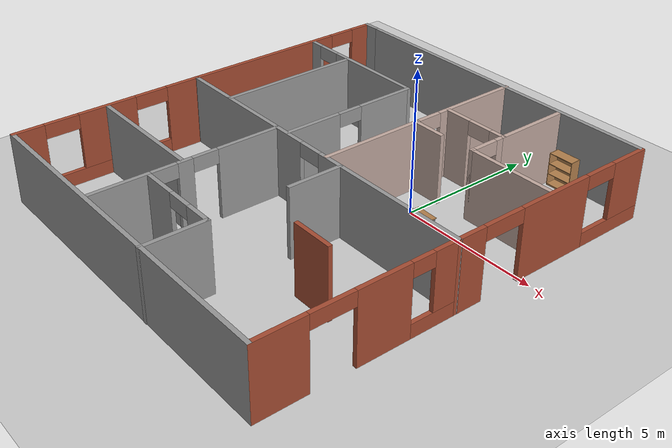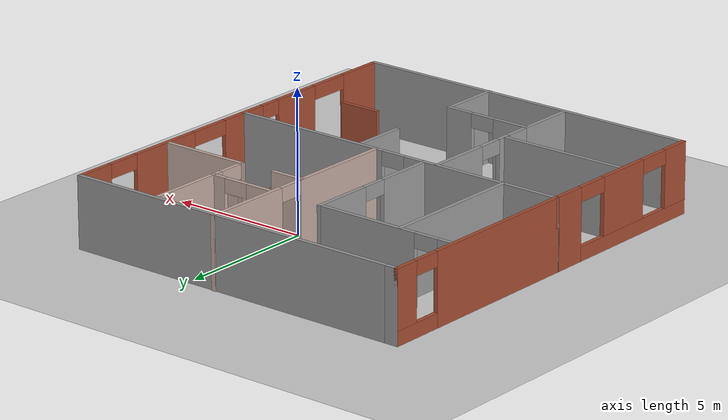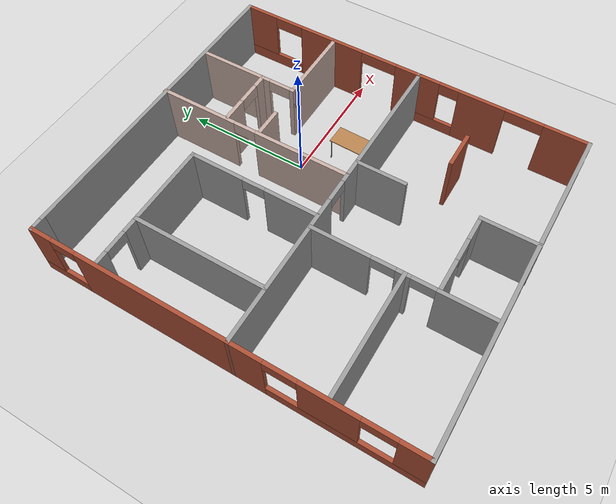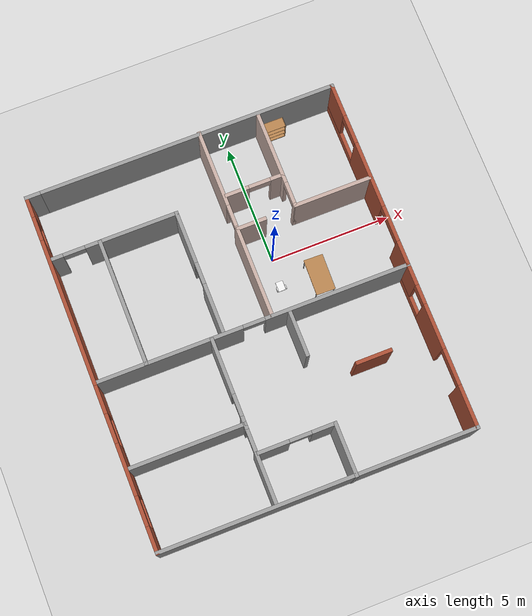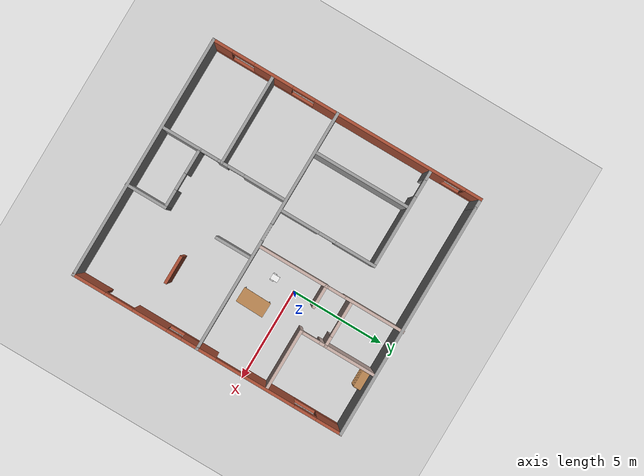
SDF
<sdf version="1.6">
 <world name="default">
  <model name="ground_plane">
   <static>1</static>
   <link name="link">
    <collision name="collision">
     <geometry><plane><normal>0 0 1</normal><size>100 100</size></plane></geometry>
     <surface>
      <contact><collide_bitmask>65535</collide_bitmask></contact>
      <friction><ode><mu>100</mu><mu2>50</mu2></ode></friction>
     </surface>
    </collision>
    <visual name="visual">
     <cast_shadows>0</cast_shadows>
     <geometry><plane><normal>0 0 1</normal><size>100 100</size></plane></geometry>
     <material>
      <script><uri>file://media/materials/scripts/gazebo.material</uri><name>Gazebo/Grey</name></script>
     </material>
    </visual>
   </link>
  </model>
  <model name="floor_plan">
   <pose>-1.88219 -2.06341 0 0 -0 0</pose>
   <link name="Wall_0">
    <pose>0 -0.539534 0 0 -0 3.14039</pose>
    <visual name="Wall_0_Visual_0">
     <pose>-3.50083 0 1.25 0 -0 0</pose>
     <geometry><box><size>5.99834 0.15 2.5</size></box></geometry>
     <material>
      <script><uri>file://media/materials/scripts/gazebo.material</uri><name>Gazebo/Grey</name></script>
      <ambient>1 1 1 1</ambient>
     </material>
     <meta><layer>0</layer></meta>
    </visual>
    <collision name="Wall_0_Collision_0">
     <geometry><box><size>5.99834 0.15 2.5</size></box></geometry>
     <pose>-3.50083 0 1.25 0 -0 0</pose>
    </collision>
    <visual name="Wall_0_Visual_1">
     <pose>3.44917 0 1.25 0 -0 0</pose>
     <geometry><box><size>6.10166 0.15 2.5</size></box></geometry>
     <material>
      <script><uri>file://media/materials/scripts/gazebo.material</uri><name>Gazebo/Grey</name></script>
      <ambient>1 1 1 1</ambient>
     </material>
     <meta><layer>0</layer></meta>
    </visual>
    <collision name="Wall_0_Collision_1">
     <geometry><box><size>6.10166 0.15 2.5</size></box></geometry>
     <pose>3.44917 0 1.25 0 -0 0</pose>
    </collision>
    <visual name="Wall_0_Visual_2">
     <pose>-0.051658 0 2.25 0 -0 0</pose>
     <geometry><box><size>0.9 0.15 0.5</size></box></geometry>
     <material>
      <script><uri>file://media/materials/scripts/gazebo.material</uri><name>Gazebo/Grey</name></script>
      <ambient>1 1 1 1</ambient>
     </material>
     <meta><layer>0</layer></meta>
    </visual>
    <collision name="Wall_0_Collision_2">
     <geometry><box><size>0.9 0.15 0.5</size></box></geometry>
     <pose>-0.051658 0 2.25 0 -0 0</pose>
    </collision>
   </link>
   <link name="Wall_11">
    <collision name="Wall_11_Collision">
     <geometry><box><size>2 0.15 2.5</size></box></geometry>
     <pose>0 0 1.25 0 -0 0</pose>
    </collision>
    <visual name="Wall_11_Visual">
     <pose>0 0 1.25 0 -0 0</pose>
     <geometry><box><size>2 0.15 2.5</size></box></geometry>
     <material>
      <script><uri>file://media/materials/scripts/gazebo.material</uri><name>Gazebo/Grey</name></script>
      <ambient>1 1 1 1</ambient>
     </material>
     <meta><layer>0</layer></meta>
    </visual>
    <pose>1.48948 -1.49915 0 0 0 -1.5708</pose>
   </link>
   <link name="Wall_13">
    <collision name="Wall_13_Collision">
     <geometry><box><size>1.5 0.15 2.5</size></box></geometry>
     <pose>0 0 1.25 0 -0 0</pose>
    </collision>
    <visual name="Wall_13_Visual">
     <pose>0 0 1.25 0 -0 0</pose>
     <geometry><box><size>1.5 0.15 2.5</size></box></geometry>
     <material>
      <script><uri>file://media/materials/scripts/gazebo.material</uri><name>Gazebo/Bricks</name></script>
      <ambient>1 1 1 1</ambient>
     </material>
     <meta><layer>0</layer></meta>
    </visual>
    <pose>3.82409 -3.40918 0 0 -0 0</pose>
   </link>
   <link name="Wall_15">
    <collision name="Wall_15_Collision">
     <geometry><box><size>4.75 0.15 2.5</size></box></geometry>
     <pose>0 0 1.25 0 -0 0</pose>
    </collision>
    <visual name="Wall_15_Visual">
     <pose>0 0 1.25 0 -0 0</pose>
     <geometry><box><size>4.75 0.15 2.5</size></box></geometry>
     <material>
      <script><uri>file://media/materials/scripts/gazebo.material</uri><name>Gazebo/Grey</name></script>
      <ambient>1 1 1 1</ambient>
     </material>
     <meta><layer>0</layer></meta>
    </visual>
    <pose>-3.97817 -4.0327 0 0 -0 3.14159</pose>
   </link>
   <link name="Wall_2">
    <pose>-6.42506 -3.93398 0 0 0 -1.5708</pose>
    <visual name="Wall_2_Visual_0">
     <pose>-2.80871 0 1.25 0 -0 0</pose>
     <geometry><box><size>1.30653 0.15 2.5</size></box></geometry>
     <material>
      <script><uri>file://media/materials/scripts/gazebo.material</uri><name>Gazebo/Bricks</name></script>
      <ambient>1 1 1 1</ambient>
     </material>
     <meta><layer>0</layer></meta>
    </visual>
    <collision name="Wall_2_Collision_0">
     <geometry><box><size>1.30653 0.15 2.5</size></box></geometry>
     <pose>-2.80871 0 1.25 0 -0 0</pose>
    </collision>
    <visual name="Wall_2_Visual_1">
     <pose>0.653263 0 0.25 0 -0 0</pose>
     <geometry><box><size>5.61743 0.15 0.5</size></box></geometry>
     <material>
      <script><uri>file://media/materials/scripts/gazebo.material</uri><name>Gazebo/Bricks</name></script>
      <ambient>1 1 1 1</ambient>
     </material>
     <meta><layer>0</layer></meta>
    </visual>
    <collision name="Wall_2_Collision_1">
     <geometry><box><size>5.61743 0.15 0.5</size></box></geometry>
     <pose>0.653263 0 0.25 0 -0 0</pose>
    </collision>
    <visual name="Wall_2_Visual_2">
     <pose>0.095441 0 1.5 0 -0 0</pose>
     <geometry><box><size>2.10179 0.15 2</size></box></geometry>
     <material>
      <script><uri>file://media/materials/scripts/gazebo.material</uri><name>Gazebo/Bricks</name></script>
      <ambient>1 1 1 1</ambient>
     </material>
     <meta><layer>0</layer></meta>
    </visual>
    <collision name="Wall_2_Collision_2">
     <geometry><box><size>2.10179 0.15 2</size></box></geometry>
     <pose>0.095441 0 1.5 0 -0 0</pose>
    </collision>
    <visual name="Wall_2_Visual_3">
     <pose>2.90416 0 1.5 0 -0 0</pose>
     <geometry><box><size>1.11564 0.15 2</size></box></geometry>
     <material>
      <script><uri>file://media/materials/scripts/gazebo.material</uri><name>Gazebo/Bricks</name></script>
      <ambient>1 1 1 1</ambient>
     </material>
     <meta><layer>0</layer></meta>
    </visual>
    <collision name="Wall_2_Collision_3">
     <geometry><box><size>1.11564 0.15 2</size></box></geometry>
     <pose>2.90416 0 1.5 0 -0 0</pose>
    </collision>
    <visual name="Wall_2_Visual_4">
     <pose>-1.55545 0 2.25 0 -0 0</pose>
     <geometry><box><size>1.2 0.15 0.5</size></box></geometry>
     <material>
      <script><uri>file://media/materials/scripts/gazebo.material</uri><name>Gazebo/Bricks</name></script>
      <ambient>1 1 1 1</ambient>
     </material>
     <meta><layer>0</layer></meta>
    </visual>
    <collision name="Wall_2_Collision_4">
     <geometry><box><size>1.2 0.15 0.5</size></box></geometry>
     <pose>-1.55545 0 2.25 0 -0 0</pose>
    </collision>
    <visual name="Wall_2_Visual_5">
     <pose>1.74633 0 2.25 0 -0 0</pose>
     <geometry><box><size>1.2 0.15 0.5</size></box></geometry>
     <material>
      <script><uri>file://media/materials/scripts/gazebo.material</uri><name>Gazebo/Bricks</name></script>
      <ambient>1 1 1 1</ambient>
     </material>
     <meta><layer>0</layer></meta>
    </visual>
    <collision name="Wall_2_Collision_5">
     <geometry><box><size>1.2 0.15 0.5</size></box></geometry>
     <pose>1.74633 0 2.25 0 -0 0</pose>
    </collision>
   </link>
   <link name="Wall_3">
    <collision name="Wall_3_Collision">
     <geometry><box><size>13 0.15 2.5</size></box></geometry>
     <pose>0 0 1.25 0 -0 0</pose>
    </collision>
    <visual name="Wall_3_Visual">
     <pose>0 0 1.25 0 -0 0</pose>
     <geometry><box><size>13 0.15 2.5</size></box></geometry>
     <material>
      <script><uri>file://media/materials/scripts/gazebo.material</uri><name>Gazebo/Grey</name></script>
      <ambient>1 1 1 1</ambient>
     </material>
     <meta><layer>0</layer></meta>
    </visual>
    <pose>0 -7.32112 0 0 0 -2.4e-05</pose>
   </link>
   <link name="Wall_36">
    <pose>-1.17934 2.06051 0 0 -0 1.5708</pose>
    <visual name="Wall_36_Visual_0">
     <pose>-1.55306 0 1.25 0 -0 0</pose>
     <geometry><box><size>2.14389 0.15 2.5</size></box></geometry>
     <material>
      <script><uri>file://media/materials/scripts/gazebo.material</uri><name>Gazebo/Grey</name></script>
      <ambient>1 1 1 1</ambient>
     </material>
     <meta><layer>0</layer></meta>
    </visual>
    <collision name="Wall_36_Collision_0">
     <geometry><box><size>2.14389 0.15 2.5</size></box></geometry>
     <pose>-1.55306 0 1.25 0 -0 0</pose>
    </collision>
    <visual name="Wall_36_Visual_1">
     <pose>1.52195 0 1.25 0 -0 0</pose>
     <geometry><box><size>2.20611 0.15 2.5</size></box></geometry>
     <material>
      <script><uri>file://media/materials/scripts/gazebo.material</uri><name>Gazebo/Grey</name></script>
      <ambient>1 1 1 1</ambient>
     </material>
     <meta><layer>0</layer></meta>
    </visual>
    <collision name="Wall_36_Collision_1">
     <geometry><box><size>2.20611 0.15 2.5</size></box></geometry>
     <pose>1.52195 0 1.25 0 -0 0</pose>
    </collision>
    <visual name="Wall_36_Visual_2">
     <pose>-0.031111 0 2.25 0 -0 0</pose>
     <geometry><box><size>0.9 0.15 0.5</size></box></geometry>
     <material>
      <script><uri>file://media/materials/scripts/gazebo.material</uri><name>Gazebo/Grey</name></script>
      <ambient>1 1 1 1</ambient>
     </material>
     <meta><layer>0</layer></meta>
    </visual>
    <collision name="Wall_36_Collision_2">
     <geometry><box><size>0.9 0.15 0.5</size></box></geometry>
     <pose>-0.031111 0 2.25 0 -0 0</pose>
    </collision>
   </link>
   <link name="Wall_37">
    <pose>-3.72933 4.61051 0 0 -0 3.14159</pose>
    <visual name="Wall_37_Visual_0">
     <pose>-0.694741 0 1.25 0 -0 0</pose>
     <geometry><box><size>3.86052 0.15 2.5</size></box></geometry>
     <material>
      <script><uri>file://media/materials/scripts/gazebo.material</uri><name>Gazebo/Grey</name></script>
      <ambient>1 1 1 1</ambient>
     </material>
     <meta><layer>0</layer></meta>
    </visual>
    <collision name="Wall_37_Collision_0">
     <geometry><box><size>3.86052 0.15 2.5</size></box></geometry>
     <pose>-0.694741 0 1.25 0 -0 0</pose>
    </collision>
    <visual name="Wall_37_Visual_1">
     <pose>2.38026 0 1.25 0 -0 0</pose>
     <geometry><box><size>0.489482 0.15 2.5</size></box></geometry>
     <material>
      <script><uri>file://media/materials/scripts/gazebo.material</uri><name>Gazebo/Grey</name></script>
      <ambient>1 1 1 1</ambient>
     </material>
     <meta><layer>0</layer></meta>
    </visual>
    <collision name="Wall_37_Collision_1">
     <geometry><box><size>0.489482 0.15 2.5</size></box></geometry>
     <pose>2.38026 0 1.25 0 -0 0</pose>
    </collision>
    <visual name="Wall_37_Visual_2">
     <pose>1.68552 0 2.25 0 -0 0</pose>
     <geometry><box><size>0.9 0.15 0.5</size></box></geometry>
     <material>
      <script><uri>file://media/materials/scripts/gazebo.material</uri><name>Gazebo/Grey</name></script>
      <ambient>1 1 1 1</ambient>
     </material>
     <meta><layer>0</layer></meta>
    </visual>
    <collision name="Wall_37_Collision_2">
     <geometry><box><size>0.9 0.15 0.5</size></box></geometry>
     <pose>1.68552 0 2.25 0 -0 0</pose>
    </collision>
   </link>
   <link name="Wall_39">
    <collision name="Wall_39_Collision">
     <geometry><box><size>5.25 0.15 2.5</size></box></geometry>
     <pose>0 0 1.25 0 -0 0</pose>
    </collision>
    <visual name="Wall_39_Visual">
     <pose>0 0 1.25 0 -0 0</pose>
     <geometry><box><size>5.25 0.15 2.5</size></box></geometry>
     <material>
      <script><uri>file://media/materials/scripts/gazebo.material</uri><name>Gazebo/Grey</name></script>
      <ambient>1 1 1 1</ambient>
     </material>
     <meta><layer>0</layer></meta>
    </visual>
    <pose>-4.34796 2.03294 0 0 0 -1.5708</pose>
   </link>
   <link name="Wall_4">
    <pose>6.42506 -3.93427 0 0 -0 1.5708</pose>
    <visual name="Wall_4_Visual_0">
     <pose>-2.56147 0 1.25 0 -0 0</pose>
     <geometry><box><size>1.80105 0.15 2.5</size></box></geometry>
     <material>
      <script><uri>file://media/materials/scripts/gazebo.material</uri><name>Gazebo/Bricks</name></script>
      <ambient>1 1 1 1</ambient>
     </material>
     <meta><layer>0</layer></meta>
    </visual>
    <collision name="Wall_4_Collision_0">
     <geometry><box><size>1.80105 0.15 2.5</size></box></geometry>
     <pose>-2.56147 0 1.25 0 -0 0</pose>
    </collision>
    <visual name="Wall_4_Visual_1">
     <pose>0.775723 0 1.25 0 -0 0</pose>
     <geometry><box><size>1.87334 0.15 2.5</size></box></geometry>
     <material>
      <script><uri>file://media/materials/scripts/gazebo.material</uri><name>Gazebo/Bricks</name></script>
      <ambient>1 1 1 1</ambient>
     </material>
     <meta><layer>0</layer></meta>
    </visual>
    <collision name="Wall_4_Collision_1">
     <geometry><box><size>1.87334 0.15 2.5</size></box></geometry>
     <pose>0.775723 0 1.25 0 -0 0</pose>
    </collision>
    <visual name="Wall_4_Visual_2">
     <pose>2.5872 0 0.25 0 -0 0</pose>
     <geometry><box><size>1.74961 0.15 0.5</size></box></geometry>
     <material>
      <script><uri>file://media/materials/scripts/gazebo.material</uri><name>Gazebo/Bricks</name></script>
      <ambient>1 1 1 1</ambient>
     </material>
     <meta><layer>0</layer></meta>
    </visual>
    <collision name="Wall_4_Collision_2">
     <geometry><box><size>1.74961 0.15 0.5</size></box></geometry>
     <pose>2.5872 0 0.25 0 -0 0</pose>
    </collision>
    <visual name="Wall_4_Visual_3">
     <pose>2.9872 0 1.5 0 -0 0</pose>
     <geometry><box><size>0.949605 0.15 2</size></box></geometry>
     <material>
      <script><uri>file://media/materials/scripts/gazebo.material</uri><name>Gazebo/Bricks</name></script>
      <ambient>1 1 1 1</ambient>
     </material>
     <meta><layer>0</layer></meta>
    </visual>
    <collision name="Wall_4_Collision_3">
     <geometry><box><size>0.949605 0.15 2</size></box></geometry>
     <pose>2.9872 0 1.5 0 -0 0</pose>
    </collision>
    <visual name="Wall_4_Visual_4">
     <pose>-0.910948 0 2.25 0 -0 0</pose>
     <geometry><box><size>1.5 0.15 0.5</size></box></geometry>
     <material>
      <script><uri>file://media/materials/scripts/gazebo.material</uri><name>Gazebo/Bricks</name></script>
      <ambient>1 1 1 1</ambient>
     </material>
     <meta><layer>0</layer></meta>
    </visual>
    <collision name="Wall_4_Collision_4">
     <geometry><box><size>1.5 0.15 0.5</size></box></geometry>
     <pose>-0.910948 0 2.25 0 -0 0</pose>
    </collision>
    <visual name="Wall_4_Visual_5">
     <pose>2.11239 0 2.25 0 -0 0</pose>
     <geometry><box><size>0.8 0.15 0.5</size></box></geometry>
     <material>
      <script><uri>file://media/materials/scripts/gazebo.material</uri><name>Gazebo/Bricks</name></script>
      <ambient>1 1 1 1</ambient>
     </material>
     <meta><layer>0</layer></meta>
    </visual>
    <collision name="Wall_4_Collision_5">
     <geometry><box><size>0.8 0.15 0.5</size></box></geometry>
     <pose>2.11239 0 2.25 0 -0 0</pose>
    </collision>
   </link>
   <link name="Wall_45">
    <pose>6.425 3.37786 0 0 -0 1.57081</pose>
    <visual name="Wall_45_Visual_0">
     <pose>-3.45923 0 1.25 0 -0 0</pose>
     <geometry><box><size>1.08155 0.15 2.5</size></box></geometry>
     <material>
      <script><uri>file://media/materials/scripts/gazebo.material</uri><name>Gazebo/Bricks</name></script>
      <ambient>1 1 1 1</ambient>
     </material>
     <meta><layer>0</layer></meta>
    </visual>
    <collision name="Wall_45_Collision_0">
     <geometry><box><size>1.08155 0.15 2.5</size></box></geometry>
     <pose>-3.45923 0 1.25 0 -0 0</pose>
    </collision>
    <visual name="Wall_45_Visual_1">
     <pose>-0.023066 0 1.25 0 -0 0</pose>
     <geometry><box><size>2.79077 0.15 2.5</size></box></geometry>
     <material>
      <script><uri>file://media/materials/scripts/gazebo.material</uri><name>Gazebo/Bricks</name></script>
      <ambient>1 1 1 1</ambient>
     </material>
     <meta><layer>0</layer></meta>
    </visual>
    <collision name="Wall_45_Collision_1">
     <geometry><box><size>2.79077 0.15 2.5</size></box></geometry>
     <pose>-0.023066 0 1.25 0 -0 0</pose>
    </collision>
    <visual name="Wall_45_Visual_2">
     <pose>2.68616 0 0.25 0 -0 0</pose>
     <geometry><box><size>2.62768 0.15 0.5</size></box></geometry>
     <material>
      <script><uri>file://media/materials/scripts/gazebo.material</uri><name>Gazebo/Bricks</name></script>
      <ambient>1 1 1 1</ambient>
     </material>
     <meta><layer>0</layer></meta>
    </visual>
    <collision name="Wall_45_Collision_2">
     <geometry><box><size>2.62768 0.15 0.5</size></box></geometry>
     <pose>2.68616 0 0.25 0 -0 0</pose>
    </collision>
    <visual name="Wall_45_Visual_3">
     <pose>3.28616 0 1.5 0 -0 0</pose>
     <geometry><box><size>1.42768 0.15 2</size></box></geometry>
     <material>
      <script><uri>file://media/materials/scripts/gazebo.material</uri><name>Gazebo/Bricks</name></script>
      <ambient>1 1 1 1</ambient>
     </material>
     <meta><layer>0</layer></meta>
    </visual>
    <collision name="Wall_45_Collision_3">
     <geometry><box><size>1.42768 0.15 2</size></box></geometry>
     <pose>3.28616 0 1.5 0 -0 0</pose>
    </collision>
    <visual name="Wall_45_Visual_4">
     <pose>-2.16845 0 2.25 0 -0 0</pose>
     <geometry><box><size>1.5 0.15 0.5</size></box></geometry>
     <material>
      <script><uri>file://media/materials/scripts/gazebo.material</uri><name>Gazebo/Bricks</name></script>
      <ambient>1 1 1 1</ambient>
     </material>
     <meta><layer>0</layer></meta>
    </visual>
    <collision name="Wall_45_Collision_4">
     <geometry><box><size>1.5 0.15 0.5</size></box></geometry>
     <pose>-2.16845 0 2.25 0 -0 0</pose>
    </collision>
    <visual name="Wall_45_Visual_5">
     <pose>1.97232 0 2.25 0 -0 0</pose>
     <geometry><box><size>1.2 0.15 0.5</size></box></geometry>
     <material>
      <script><uri>file://media/materials/scripts/gazebo.material</uri><name>Gazebo/Bricks</name></script>
      <ambient>1 1 1 1</ambient>
     </material>
     <meta><layer>0</layer></meta>
    </visual>
    <collision name="Wall_45_Collision_5">
     <geometry><box><size>1.2 0.15 0.5</size></box></geometry>
     <pose>1.97232 0 2.25 0 -0 0</pose>
    </collision>
   </link>
   <link name="Wall_46">
    <collision name="Wall_46_Collision">
     <geometry><box><size>12.5 0.15 2.5</size></box></geometry>
     <pose>0 0 1.25 0 -0 0</pose>
    </collision>
    <visual name="Wall_46_Visual">
     <pose>0 0 1.25 0 -0 0</pose>
     <geometry><box><size>12.5 0.15 2.5</size></box></geometry>
     <material>
      <script><uri>file://media/materials/scripts/gazebo.material</uri><name>Gazebo/Grey</name></script>
      <ambient>1 1 1 1</ambient>
     </material>
     <meta><layer>0</layer></meta>
    </visual>
    <pose>0.249944 7.303 0 0 -0 3.14159</pose>
   </link>
   <link name="Wall_48">
    <pose>-6.42506 3.378 0 0 -0 1.5708</pose>
    <visual name="Wall_48_Visual_0">
     <pose>-0.956686 0 1.25 0 -0 0</pose>
     <geometry><box><size>6.08663 0.15 2.5</size></box></geometry>
     <material>
      <script><uri>file://media/materials/scripts/gazebo.material</uri><name>Gazebo/Bricks</name></script>
      <ambient>1 1 1 1</ambient>
     </material>
     <meta><layer>0</layer></meta>
    </visual>
    <collision name="Wall_48_Collision_0">
     <geometry><box><size>6.08663 0.15 2.5</size></box></geometry>
     <pose>-0.956686 0 1.25 0 -0 0</pose>
    </collision>
    <visual name="Wall_48_Visual_1">
     <pose>3.04331 0 0.25 0 -0 0</pose>
     <geometry><box><size>1.91337 0.15 0.5</size></box></geometry>
     <material>
      <script><uri>file://media/materials/scripts/gazebo.material</uri><name>Gazebo/Bricks</name></script>
      <ambient>1 1 1 1</ambient>
     </material>
     <meta><layer>0</layer></meta>
    </visual>
    <collision name="Wall_48_Collision_1">
     <geometry><box><size>1.91337 0.15 0.5</size></box></geometry>
     <pose>3.04331 0 0.25 0 -0 0</pose>
    </collision>
    <visual name="Wall_48_Visual_2">
     <pose>3.54331 0 1.5 0 -0 0</pose>
     <geometry><box><size>0.913372 0.15 2</size></box></geometry>
     <material>
      <script><uri>file://media/materials/scripts/gazebo.material</uri><name>Gazebo/Bricks</name></script>
      <ambient>1 1 1 1</ambient>
     </material>
     <meta><layer>0</layer></meta>
    </visual>
    <collision name="Wall_48_Collision_2">
     <geometry><box><size>0.913372 0.15 2</size></box></geometry>
     <pose>3.54331 0 1.5 0 -0 0</pose>
    </collision>
    <visual name="Wall_48_Visual_3">
     <pose>2.58663 0 2.25 0 -0 0</pose>
     <geometry><box><size>1 0.15 0.5</size></box></geometry>
     <material>
      <script><uri>file://media/materials/scripts/gazebo.material</uri><name>Gazebo/Bricks</name></script>
      <ambient>1 1 1 1</ambient>
     </material>
     <meta><layer>0</layer></meta>
    </visual>
    <collision name="Wall_48_Collision_3">
     <geometry><box><size>1 0.15 0.5</size></box></geometry>
     <pose>2.58663 0 2.25 0 -0 0</pose>
    </collision>
   </link>
   <link name="Wall_49">
    <collision name="Wall_49_Collision">
     <geometry><box><size>0.65 0.15 2.5</size></box></geometry>
     <pose>0 0 1.25 0 -0 0</pose>
    </collision>
    <visual name="Wall_49_Visual">
     <pose>0 0 1.25 0 -0 0</pose>
     <geometry><box><size>0.65 0.15 2.5</size></box></geometry>
     <material>
      <script><uri>file://media/materials/scripts/gazebo.material</uri><name>Gazebo/Grey</name></script>
      <ambient>1 1 1 1</ambient>
     </material>
     <meta><layer>0</layer></meta>
    </visual>
    <pose>-6.17506 7.303 0 0 -0 0</pose>
   </link>
   <link name="Wall_51">
    <pose>0.800151 3.41451 0 0 -0 1.5708</pose>
    <visual name="Wall_51_Visual_0">
     <pose>-2.06358 0 1.25 0 -0 0</pose>
     <geometry><box><size>3.87284 0.15 2.5</size></box></geometry>
     <material>
      <script><uri>file://media/materials/scripts/gazebo.material</uri><name>Gazebo/Grey</name></script>
      <ambient>0.760784 0.662745 0.627451 1</ambient>
     </material>
     <meta><layer>0</layer></meta>
    </visual>
    <collision name="Wall_51_Collision_0">
     <geometry><box><size>3.87284 0.15 2.5</size></box></geometry>
     <pose>-2.06358 0 1.25 0 -0 0</pose>
    </collision>
    <visual name="Wall_51_Visual_1">
     <pose>2.38642 0 1.25 0 -0 0</pose>
     <geometry><box><size>3.22716 0.15 2.5</size></box></geometry>
     <material>
      <script><uri>file://media/materials/scripts/gazebo.material</uri><name>Gazebo/Grey</name></script>
      <ambient>0.760784 0.662745 0.627451 1</ambient>
     </material>
     <meta><layer>0</layer></meta>
    </visual>
    <collision name="Wall_51_Collision_1">
     <geometry><box><size>3.22716 0.15 2.5</size></box></geometry>
     <pose>2.38642 0 1.25 0 -0 0</pose>
    </collision>
    <visual name="Wall_51_Visual_2">
     <pose>0.322836 0 2.25 0 -0 0</pose>
     <geometry><box><size>0.9 0.15 0.5</size></box></geometry>
     <material>
      <script><uri>file://media/materials/scripts/gazebo.material</uri><name>Gazebo/Grey</name></script>
      <ambient>0.760784 0.662745 0.627451 1</ambient>
     </material>
     <meta><layer>0</layer></meta>
    </visual>
    <collision name="Wall_51_Collision_2">
     <geometry><box><size>0.9 0.15 0.5</size></box></geometry>
     <pose>0.322836 0 2.25 0 -0 0</pose>
    </collision>
   </link>
   <link name="Wall_53">
    <pose>2.06768 4.57778 0 0 -0 0</pose>
    <visual name="Wall_53_Visual_0">
     <pose>-0.747106 0 1.25 0 -0 0</pose>
     <geometry><box><size>1.00579 0.15 2.5</size></box></geometry>
     <material>
      <script><uri>file://media/materials/scripts/gazebo.material</uri><name>Gazebo/Grey</name></script>
      <ambient>0.760784 0.662745 0.627451 1</ambient>
     </material>
     <meta><layer>0</layer></meta>
    </visual>
    <collision name="Wall_53_Collision_0">
     <geometry><box><size>1.00579 0.15 2.5</size></box></geometry>
     <pose>-0.747106 0 1.25 0 -0 0</pose>
    </collision>
    <visual name="Wall_53_Visual_1">
     <pose>0.952894 0 1.25 0 -0 0</pose>
     <geometry><box><size>0.594213 0.15 2.5</size></box></geometry>
     <material>
      <script><uri>file://media/materials/scripts/gazebo.material</uri><name>Gazebo/Grey</name></script>
      <ambient>0.760784 0.662745 0.627451 1</ambient>
     </material>
     <meta><layer>0</layer></meta>
    </visual>
    <collision name="Wall_53_Collision_1">
     <geometry><box><size>0.594213 0.15 2.5</size></box></geometry>
     <pose>0.952894 0 1.25 0 -0 0</pose>
    </collision>
    <visual name="Wall_53_Visual_2">
     <pose>0.205787 0 2.25 0 -0 0</pose>
     <geometry><box><size>0.9 0.15 0.5</size></box></geometry>
     <material>
      <script><uri>file://media/materials/scripts/gazebo.material</uri><name>Gazebo/Grey</name></script>
      <ambient>0.760784 0.662745 0.627451 1</ambient>
     </material>
     <meta><layer>0</layer></meta>
    </visual>
    <collision name="Wall_53_Collision_2">
     <geometry><box><size>0.9 0.15 0.5</size></box></geometry>
     <pose>0.205787 0 2.25 0 -0 0</pose>
    </collision>
   </link>
   <link name="Wall_54">
    <collision name="Wall_54_Collision">
     <geometry><box><size>2.75 0.15 2.5</size></box></geometry>
     <pose>0 0 1.25 0 -0 0</pose>
    </collision>
    <visual name="Wall_54_Visual">
     <pose>0 0 1.25 0 -0 0</pose>
     <geometry><box><size>2.75 0.15 2.5</size></box></geometry>
     <material>
      <script><uri>file://media/materials/scripts/gazebo.material</uri><name>Gazebo/Grey</name></script>
      <ambient>0.760784 0.662745 0.627451 1</ambient>
     </material>
     <meta><layer>0</layer></meta>
    </visual>
    <pose>3.24268 5.87778 0 0 -0 1.5708</pose>
   </link>
   <link name="Wall_56">
    <pose>3.24268 3.90278 0 0 0 -1.5708</pose>
    <visual name="Wall_56_Visual_0">
     <pose>-0.543058 0 1.25 0 -0 0</pose>
     <geometry><box><size>0.413884 0.15 2.5</size></box></geometry>
     <material>
      <script><uri>file://media/materials/scripts/gazebo.material</uri><name>Gazebo/Grey</name></script>
      <ambient>0.760784 0.662745 0.627451 1</ambient>
     </material>
     <meta><layer>0</layer></meta>
    </visual>
    <collision name="Wall_56_Collision_0">
     <geometry><box><size>0.413884 0.15 2.5</size></box></geometry>
     <pose>-0.543058 0 1.25 0 -0 0</pose>
    </collision>
    <visual name="Wall_56_Visual_1">
     <pose>0.656942 0 1.25 0 -0 0</pose>
     <geometry><box><size>0.186116 0.15 2.5</size></box></geometry>
     <material>
      <script><uri>file://media/materials/scripts/gazebo.material</uri><name>Gazebo/Grey</name></script>
      <ambient>0.760784 0.662745 0.627451 1</ambient>
     </material>
     <meta><layer>0</layer></meta>
    </visual>
    <collision name="Wall_56_Collision_1">
     <geometry><box><size>0.186116 0.15 2.5</size></box></geometry>
     <pose>0.656942 0 1.25 0 -0 0</pose>
    </collision>
    <visual name="Wall_56_Visual_2">
     <pose>0.113884 0 2.25 0 -0 0</pose>
     <geometry><box><size>0.9 0.15 0.5</size></box></geometry>
     <material>
      <script><uri>file://media/materials/scripts/gazebo.material</uri><name>Gazebo/Grey</name></script>
      <ambient>0.760784 0.662745 0.627451 1</ambient>
     </material>
     <meta><layer>0</layer></meta>
    </visual>
    <collision name="Wall_56_Collision_2">
     <geometry><box><size>0.9 0.15 0.5</size></box></geometry>
     <pose>0.113884 0 2.25 0 -0 0</pose>
    </collision>
   </link>
   <link name="Wall_57">
    <collision name="Wall_57_Collision">
     <geometry><box><size>3.25 0.15 2.5</size></box></geometry>
     <pose>0 0 1.25 0 -0 0</pose>
    </collision>
    <visual name="Wall_57_Visual">
     <pose>0 0 1.25 0 -0 0</pose>
     <geometry><box><size>3.25 0.15 2.5</size></box></geometry>
     <material>
      <script><uri>file://media/materials/scripts/gazebo.material</uri><name>Gazebo/Grey</name></script>
      <ambient>0.760784 0.662745 0.627451 1</ambient>
     </material>
     <meta><layer>0</layer></meta>
    </visual>
    <pose>4.79268 3.22778 0 0 -0 0</pose>
   </link>
   <link name="Wall_59">
    <collision name="Wall_59_Collision">
     <geometry><box><size>1.25 0.15 2.5</size></box></geometry>
     <pose>0 0 1.25 0 -0 0</pose>
    </collision>
    <visual name="Wall_59_Visual">
     <pose>0 0 1.25 0 -0 0</pose>
     <geometry><box><size>1.25 0.15 2.5</size></box></geometry>
     <material>
      <script><uri>file://media/materials/scripts/gazebo.material</uri><name>Gazebo/Grey</name></script>
      <ambient>0.760784 0.662745 0.627451 1</ambient>
     </material>
     <meta><layer>0</layer></meta>
    </visual>
    <pose>1.382 3.16183 0 0 -0 0</pose>
   </link>
   <link name="Wall_6">
    <pose>-1.67816 -3.87415 0 0 0 -1.5708</pose>
    <visual name="Wall_6_Visual_0">
     <pose>-2.21563 0 1.25 0 -0 0</pose>
     <geometry><box><size>2.31875 0.15 2.5</size></box></geometry>
     <material>
      <script><uri>file://media/materials/scripts/gazebo.material</uri><name>Gazebo/Grey</name></script>
      <ambient>1 1 1 1</ambient>
     </material>
     <meta><layer>0</layer></meta>
    </visual>
    <collision name="Wall_6_Collision_0">
     <geometry><box><size>2.31875 0.15 2.5</size></box></geometry>
     <pose>-2.21563 0 1.25 0 -0 0</pose>
    </collision>
    <visual name="Wall_6_Visual_1">
     <pose>0.110792 0 1.25 0 -0 0</pose>
     <geometry><box><size>0.534083 0.15 2.5</size></box></geometry>
     <material>
      <script><uri>file://media/materials/scripts/gazebo.material</uri><name>Gazebo/Grey</name></script>
      <ambient>1 1 1 1</ambient>
     </material>
     <meta><layer>0</layer></meta>
    </visual>
    <collision name="Wall_6_Collision_1">
     <geometry><box><size>0.534083 0.15 2.5</size></box></geometry>
     <pose>0.110792 0 1.25 0 -0 0</pose>
    </collision>
    <visual name="Wall_6_Visual_2">
     <pose>2.32642 0 1.25 0 -0 0</pose>
     <geometry><box><size>2.09717 0.15 2.5</size></box></geometry>
     <material>
      <script><uri>file://media/materials/scripts/gazebo.material</uri><name>Gazebo/Grey</name></script>
      <ambient>1 1 1 1</ambient>
     </material>
     <meta><layer>0</layer></meta>
    </visual>
    <collision name="Wall_6_Collision_2">
     <geometry><box><size>2.09717 0.15 2.5</size></box></geometry>
     <pose>2.32642 0 1.25 0 -0 0</pose>
    </collision>
    <visual name="Wall_6_Visual_3">
     <pose>-0.60625 0 2.25 0 -0 0</pose>
     <geometry><box><size>0.9 0.15 0.5</size></box></geometry>
     <material>
      <script><uri>file://media/materials/scripts/gazebo.material</uri><name>Gazebo/Grey</name></script>
      <ambient>1 1 1 1</ambient>
     </material>
     <meta><layer>0</layer></meta>
    </visual>
    <collision name="Wall_6_Collision_3">
     <geometry><box><size>0.9 0.15 0.5</size></box></geometry>
     <pose>-0.60625 0 2.25 0 -0 0</pose>
    </collision>
    <visual name="Wall_6_Visual_4">
     <pose>0.827833 0 2.25 0 -0 0</pose>
     <geometry><box><size>0.9 0.15 0.5</size></box></geometry>
     <material>
      <script><uri>file://media/materials/scripts/gazebo.material</uri><name>Gazebo/Grey</name></script>
      <ambient>1 1 1 1</ambient>
     </material>
     <meta><layer>0</layer></meta>
    </visual>
    <collision name="Wall_6_Collision_4">
     <geometry><box><size>0.9 0.15 0.5</size></box></geometry>
     <pose>0.827833 0 2.25 0 -0 0</pose>
    </collision>
   </link>
   <link name="Wall_8">
    <pose>-0.047711 -5.23951 0 0 -0 0</pose>
    <visual name="Wall_8_Visual_0">
     <pose>-0.96773 0 1.25 0 -0 0</pose>
     <geometry><box><size>1.31454 0.15 2.5</size></box></geometry>
     <material>
      <script><uri>file://media/materials/scripts/gazebo.material</uri><name>Gazebo/Grey</name></script>
      <ambient>1 1 1 1</ambient>
     </material>
     <meta><layer>0</layer></meta>
    </visual>
    <collision name="Wall_8_Collision_0">
     <geometry><box><size>1.31454 0.15 2.5</size></box></geometry>
     <pose>-0.96773 0 1.25 0 -0 0</pose>
    </collision>
    <visual name="Wall_8_Visual_1">
     <pose>1.10727 0 1.25 0 -0 0</pose>
     <geometry><box><size>1.03546 0.15 2.5</size></box></geometry>
     <material>
      <script><uri>file://media/materials/scripts/gazebo.material</uri><name>Gazebo/Grey</name></script>
      <ambient>1 1 1 1</ambient>
     </material>
     <meta><layer>0</layer></meta>
    </visual>
    <collision name="Wall_8_Collision_1">
     <geometry><box><size>1.03546 0.15 2.5</size></box></geometry>
     <pose>1.10727 0 1.25 0 -0 0</pose>
    </collision>
    <visual name="Wall_8_Visual_2">
     <pose>0.13954 0 2.25 0 -0 0</pose>
     <geometry><box><size>0.9 0.15 0.5</size></box></geometry>
     <material>
      <script><uri>file://media/materials/scripts/gazebo.material</uri><name>Gazebo/Grey</name></script>
      <ambient>1 1 1 1</ambient>
     </material>
     <meta><layer>0</layer></meta>
    </visual>
    <collision name="Wall_8_Collision_2">
     <geometry><box><size>0.9 0.15 0.5</size></box></geometry>
     <pose>0.13954 0 2.25 0 -0 0</pose>
    </collision>
   </link>
   <link name="Wall_9">
    <collision name="Wall_9_Collision">
     <geometry><box><size>2.25 0.15 2.5</size></box></geometry>
     <pose>0 0 1.25 0 -0 0</pose>
    </collision>
    <visual name="Wall_9_Visual">
     <pose>0 0 1.25 0 -0 0</pose>
     <geometry><box><size>2.25 0.15 2.5</size></box></geometry>
     <material>
      <script><uri>file://media/materials/scripts/gazebo.material</uri><name>Gazebo/Grey</name></script>
      <ambient>1 1 1 1</ambient>
     </material>
     <meta><layer>0</layer></meta>
    </visual>
    <pose>1.50229 -6.28951 0 0 0 -1.5708</pose>
   </link>
   <static>1</static>
  </model>
  <model name="table">
   <static>1</static>
   <link name="link">
    <collision name="surface">
     <pose>0 0 1 0 -0 0</pose>
     <geometry><box><size>1.5 0.8 0.03</size></box></geometry>
     <surface><friction><ode><mu>0.6</mu><mu2>0.6</mu2></ode></friction></surface>
    </collision>
    <visual name="visual1">
     <pose>0 0 1 0 -0 0</pose>
     <geometry><box><size>1.5 0.8 0.03</size></box></geometry>
     <material>
      <script><uri>file://media/materials/scripts/gazebo.material</uri><name>Gazebo/Wood</name></script>
     </material>
    </visual>
    <collision name="front_left_leg">
     <pose>0.68 0.38 0.5 0 -0 0</pose>
     <geometry><cylinder><radius>0.02</radius><length>1</length></cylinder></geometry>
    </collision>
    <visual name="front_left_leg">
     <pose>0.68 0.38 0.5 0 -0 0</pose>
     <geometry><cylinder><radius>0.02</radius><length>1</length></cylinder></geometry>
     <material>
      <script><uri>file://media/materials/scripts/gazebo.material</uri><name>Gazebo/Grey</name></script>
     </material>
    </visual>
    <collision name="front_right_leg">
     <pose>0.68 -0.38 0.5 0 -0 0</pose>
     <geometry><cylinder><radius>0.02</radius><length>1</length></cylinder></geometry>
    </collision>
    <visual name="front_right_leg">
     <pose>0.68 -0.38 0.5 0 -0 0</pose>
     <geometry><cylinder><radius>0.02</radius><length>1</length></cylinder></geometry>
     <material>
      <script><uri>file://media/materials/scripts/gazebo.material</uri><name>Gazebo/Grey</name></script>
     </material>
    </visual>
    <collision name="back_right_leg">
     <pose>-0.68 -0.38 0.5 0 -0 0</pose>
     <geometry><cylinder><radius>0.02</radius><length>1</length></cylinder></geometry>
    </collision>
    <visual name="back_right_leg">
     <pose>-0.68 -0.38 0.5 0 -0 0</pose>
     <geometry><cylinder><radius>0.02</radius><length>1</length></cylinder></geometry>
     <material>
      <script><uri>file://media/materials/scripts/gazebo.material</uri><name>Gazebo/Grey</name></script>
     </material>
    </visual>
    <collision name="back_left_leg">
     <pose>-0.68 0.38 0.5 0 -0 0</pose>
     <geometry><cylinder><radius>0.02</radius><length>1</length></cylinder></geometry>
    </collision>
    <visual name="back_left_leg">
     <pose>-0.68 0.38 0.5 0 -0 0</pose>
     <geometry><cylinder><radius>0.02</radius><length>1</length></cylinder></geometry>
     <material>
      <script><uri>file://media/materials/scripts/gazebo.material</uri><name>Gazebo/Grey</name></script>
     </material>
    </visual>
   </link>
   <pose>1.41604 -1.43829 0 0 -0 1.54532</pose>
  </model>
  <model name="bookshelf_0">
   <static>1</static>
   <link name="link">
    <inertial><mass>1</mass></inertial>
    <collision name="back">
     <pose>0 0.005 0.6 0 -0 0</pose>
     <geometry><box><size>0.9 0.01 1.2</size></box></geometry>
    </collision>
    <visual name="visual1">
     <pose>0 0.005 0.6 0 -0 0</pose>
     <geometry><box><size>0.9 0.01 1.2</size></box></geometry>
     <material>
      <script><uri>file://media/materials/scripts/gazebo.material</uri><name>Gazebo/Wood</name></script>
     </material>
    </visual>
    <collision name="left_side">
     <pose>0.45 -0.195 0.6 0 -0 0</pose>
     <geometry><box><size>0.02 0.4 1.2</size></box></geometry>
    </collision>
    <visual name="visual2">
     <pose>0.45 -0.195 0.6 0 -0 0</pose>
     <geometry><box><size>0.02 0.4 1.2</size></box></geometry>
     <material>
      <script><uri>file://media/materials/scripts/gazebo.material</uri><name>Gazebo/Wood</name></script>
     </material>
    </visual>
    <collision name="right_side">
     <pose>-0.45 -0.195 0.6 0 -0 0</pose>
     <geometry><box><size>0.02 0.4 1.2</size></box></geometry>
    </collision>
    <visual name="visual3">
     <pose>-0.45 -0.195 0.6 0 -0 0</pose>
     <geometry><box><size>0.02 0.4 1.2</size></box></geometry>
     <material>
      <script><uri>file://media/materials/scripts/gazebo.material</uri><name>Gazebo/Wood</name></script>
     </material>
    </visual>
    <collision name="bottom">
     <pose>0 -0.195 0.03 0 -0 0</pose>
     <geometry><box><size>0.88 0.4 0.06</size></box></geometry>
    </collision>
    <visual name="visual4">
     <pose>0 -0.195 0.03 0 -0 0</pose>
     <geometry><box><size>0.88 0.4 0.06</size></box></geometry>
     <material>
      <script><uri>file://media/materials/scripts/gazebo.material</uri><name>Gazebo/Wood</name></script>
     </material>
    </visual>
    <collision name="top">
     <pose>0 -0.195 1.19 0 -0 0</pose>
     <geometry><box><size>0.88 0.4 0.02</size></box></geometry>
    </collision>
    <visual name="visual5">
     <pose>0 -0.195 1.19 0 -0 0</pose>
     <geometry><box><size>0.88 0.4 0.02</size></box></geometry>
     <material>
      <script><uri>file://media/materials/scripts/gazebo.material</uri><name>Gazebo/Wood</name></script>
     </material>
    </visual>
    <collision name="low_shelf">
     <pose>0 -0.195 0.43 0 -0 0</pose>
     <geometry><box><size>0.88 0.4 0.02</size></box></geometry>
    </collision>
    <visual name="visual6">
     <pose>0 -0.195 0.43 0 -0 0</pose>
     <geometry><box><size>0.88 0.4 0.02</size></box></geometry>
     <material>
      <script><uri>file://media/materials/scripts/gazebo.material</uri><name>Gazebo/Wood</name></script>
     </material>
    </visual>
    <collision name="high_shelf">
     <pose>0 -0.195 0.8 0 -0 0</pose>
     <geometry><box><size>0.88 0.4 0.02</size></box></geometry>
    </collision>
    <visual name="visual7">
     <pose>0 -0.195 0.8 0 -0 0</pose>
     <geometry><box><size>0.88 0.4 0.02</size></box></geometry>
     <material>
      <script><uri>file://media/materials/scripts/gazebo.material</uri><name>Gazebo/Wood</name></script>
     </material>
    </visual>
   </link>
   <pose>1.97182 5.16094 0 0 -0 0</pose>
  </model>
  <model name="my_robot_v2">
   <link name="link_0">
    <pose>0 0.0125 0.0125 0 -0 0</pose>
    <inertial>
     <mass>1</mass>
     <inertia>
      <ixx>0.166667</ixx>
      <ixy>0</ixy>
      <ixz>0</ixz>
      <iyy>0.166667</iyy>
      <iyz>0</iyz>
      <izz>0.166667</izz>
     </inertia>
    </inertial>
    <visual name="visual">
     <geometry><box><size>0.3 0.4 0.05</size></box></geometry>
     <material>
      <lighting>1</lighting>
      <script><uri>file://media/materials/scripts/gazebo.material</uri><name>Gazebo/White</name></script>
      <shader type="pixel"><normal_map>__default__</normal_map></shader>
      <ambient>1 0.3 0.3 1</ambient>
      <diffuse>1 0.7 0.7 1</diffuse>
      <specular>0.01 0.01 0.01 1</specular>
      <emissive>0 0 0 1</emissive>
     </material>
    </visual>
    <collision name="collision">
     <geometry><box><size>0.3 0.4 0.05</size></box></geometry>
     <surface>
      <friction>
       <ode><mu>1</mu><mu2>1</mu2><fdir1>0 0 0</fdir1><slip1>0</slip1><slip2>0</slip2></ode>
       <torsional>
        <coefficient>1</coefficient>
        <patch_radius>0</patch_radius>
        <surface_radius>0</surface_radius>
        <use_patch_radius>1</use_patch_radius>
        <ode><slip>0</slip></ode>
       </torsional>
      </friction>
      <bounce><restitution_coefficient>0</restitution_coefficient><threshold>1e+06</threshold></bounce>
      <contact>
       <collide_without_contact>0</collide_without_contact>
       <collide_without_contact_bitmask>1</collide_without_contact_bitmask>
       <collide_bitmask>1</collide_bitmask>
       <ode>
        <soft_cfm>0</soft_cfm>
        <soft_erp>0.2</soft_erp>
        <kp>1e+13</kp>
        <kd>1</kd>
        <max_vel>0.01</max_vel>
        <min_depth>0</min_depth>
       </ode>
       <bullet>
        <split_impulse>1</split_impulse>
        <split_impulse_penetration_threshold>-0.01</split_impulse_penetration_threshold>
        <soft_cfm>0</soft_cfm>
        <soft_erp>0.2</soft_erp>
        <kp>1e+13</kp>
        <kd>1</kd>
       </bullet>
      </contact>
     </surface>
    </collision>
   </link>
   <link name="link_1">
    <pose>0 0.1625 -0.0375 0 -0 0</pose>
    <inertial>
     <mass>1</mass>
     <inertia><ixx>0.1</ixx><ixy>0</ixy><ixz>0</ixz><iyy>0.1</iyy><iyz>0</iyz><izz>0.1</izz></inertia>
    </inertial>
    <visual name="visual">
     <geometry><sphere><radius>0.05</radius></sphere></geometry>
     <material>
      <lighting>1</lighting>
      <script><uri>file://media/materials/scripts/gazebo.material</uri><name>Gazebo/White</name></script>
      <shader type="pixel"><normal_map>__default__</normal_map></shader>
      <ambient>0.3 0.3 0.3 1</ambient>
      <diffuse>0.7 0.7 0.7 1</diffuse>
      <specular>0.01 0.01 0.01 1</specular>
      <emissive>0 0 0 1</emissive>
     </material>
    </visual>
    <collision name="collision">
     <geometry><sphere><radius>0.05</radius></sphere></geometry>
     <surface>
      <friction>
       <ode><mu>1</mu><mu2>1</mu2><fdir1>0 0 0</fdir1><slip1>0</slip1><slip2>0</slip2></ode>
       <torsional>
        <coefficient>1</coefficient>
        <patch_radius>0</patch_radius>
        <surface_radius>0</surface_radius>
        <use_patch_radius>1</use_patch_radius>
        <ode><slip>0</slip></ode>
       </torsional>
      </friction>
      <bounce><restitution_coefficient>0</restitution_coefficient><threshold>1e+06</threshold></bounce>
      <contact>
       <collide_without_contact>0</collide_without_contact>
       <collide_without_contact_bitmask>1</collide_without_contact_bitmask>
       <collide_bitmask>1</collide_bitmask>
       <ode>
        <soft_cfm>0</soft_cfm>
        <soft_erp>0.2</soft_erp>
        <kp>1e+13</kp>
        <kd>1</kd>
        <max_vel>0.01</max_vel>
        <min_depth>0</min_depth>
       </ode>
       <bullet>
        <split_impulse>1</split_impulse>
        <split_impulse_penetration_threshold>-0.01</split_impulse_penetration_threshold>
        <soft_cfm>0</soft_cfm>
        <soft_erp>0.2</soft_erp>
        <kp>1e+13</kp>
        <kd>1</kd>
       </bullet>
      </contact>
     </surface>
    </collision>
   </link>
   <link name="link_2">
    <pose>-0.175 -0.0875 0.0125 0 -0 0</pose>
    <inertial>
     <mass>1</mass>
     <inertia><ixx>0.145833</ixx><ixy>0</ixy><ixz>0</ixz><iyy>0.145833</iyy><iyz>0</iyz><izz>0.125</izz></inertia>
    </inertial>
    <visual name="visual">
     <pose>0 0 0 1.5707 0 1.5707</pose>
     <geometry><cylinder><radius>0.1</radius><length>0.05</length></cylinder></geometry>
     <material>
      <lighting>1</lighting>
      <script><uri>file://media/materials/scripts/gazebo.material</uri><name>Gazebo/White</name></script>
      <shader type="pixel"><normal_map>__default__</normal_map></shader>
      <ambient>0.3 0.3 0.3 1</ambient>
      <diffuse>0.7 0.7 0.7 1</diffuse>
      <specular>0.01 0.01 0.01 1</specular>
      <emissive>0 0 0 1</emissive>
     </material>
    </visual>
    <collision name="collision">
     <pose>0 0 0 1.5707 0 1.5707</pose>
     <geometry><cylinder><radius>0.1</radius><length>0.05</length></cylinder></geometry>
     <surface>
      <friction>
       <ode><mu>1</mu><mu2>1</mu2><fdir1>0 0 0</fdir1><slip1>0</slip1><slip2>0</slip2></ode>
       <torsional>
        <coefficient>1</coefficient>
        <patch_radius>0</patch_radius>
        <surface_radius>0</surface_radius>
        <use_patch_radius>1</use_patch_radius>
        <ode><slip>0</slip></ode>
       </torsional>
      </friction>
      <bounce><restitution_coefficient>0</restitution_coefficient><threshold>1e+06</threshold></bounce>
      <contact>
       <collide_without_contact>0</collide_without_contact>
       <collide_without_contact_bitmask>1</collide_without_contact_bitmask>
       <collide_bitmask>1</collide_bitmask>
       <ode>
        <soft_cfm>0</soft_cfm>
        <soft_erp>0.2</soft_erp>
        <kp>1e+13</kp>
        <kd>1</kd>
        <max_vel>0.01</max_vel>
        <min_depth>0</min_depth>
       </ode>
       <bullet>
        <split_impulse>1</split_impulse>
        <split_impulse_penetration_threshold>-0.01</split_impulse_penetration_threshold>
        <soft_cfm>0</soft_cfm>
        <soft_erp>0.2</soft_erp>
        <kp>1e+13</kp>
        <kd>1</kd>
       </bullet>
      </contact>
     </surface>
    </collision>
   </link>
   <link name="link_2_clone">
    <pose>0.175 -0.0875 0.0125 0 -0 0</pose>
    <inertial>
     <mass>1</mass>
     <inertia><ixx>0.145833</ixx><ixy>0</ixy><ixz>0</ixz><iyy>0.145833</iyy><iyz>0</iyz><izz>0.125</izz></inertia>
    </inertial>
    <visual name="visual">
     <pose>0 0 0 1.5707 0 1.5707</pose>
     <geometry><cylinder><radius>0.1</radius><length>0.05</length></cylinder></geometry>
     <material>
      <lighting>1</lighting>
      <script><uri>file://media/materials/scripts/gazebo.material</uri><name>Gazebo/White</name></script>
      <shader type="pixel"><normal_map>__default__</normal_map></shader>
      <ambient>0.3 0.3 0.3 1</ambient>
      <diffuse>0.7 0.7 0.7 1</diffuse>
      <specular>0.01 0.01 0.01 1</specular>
      <emissive>0 0 0 1</emissive>
     </material>
    </visual>
    <collision name="collision">
     <pose>0 0 0 1.5707 0 1.5707</pose>
     <geometry><cylinder><radius>0.1</radius><length>0.05</length></cylinder></geometry>
     <surface>
      <friction>
       <ode><mu>1</mu><mu2>1</mu2><fdir1>0 0 0</fdir1><slip1>0</slip1><slip2>0</slip2></ode>
       <torsional>
        <coefficient>1</coefficient>
        <patch_radius>0</patch_radius>
        <surface_radius>0</surface_radius>
        <use_patch_radius>1</use_patch_radius>
        <ode><slip>0</slip></ode>
       </torsional>
      </friction>
      <bounce><restitution_coefficient>0</restitution_coefficient><threshold>1e+06</threshold></bounce>
      <contact>
       <collide_without_contact>0</collide_without_contact>
       <collide_without_contact_bitmask>1</collide_without_contact_bitmask>
       <collide_bitmask>1</collide_bitmask>
       <ode>
        <soft_cfm>0</soft_cfm>
        <soft_erp>0.2</soft_erp>
        <kp>1e+13</kp>
        <kd>1</kd>
        <max_vel>0.01</max_vel>
        <min_depth>0</min_depth>
       </ode>
       <bullet>
        <split_impulse>1</split_impulse>
        <split_impulse_penetration_threshold>-0.01</split_impulse_penetration_threshold>
        <soft_cfm>0</soft_cfm>
        <soft_erp>0.2</soft_erp>
        <kp>1e+13</kp>
        <kd>1</kd>
       </bullet>
      </contact>
     </surface>
    </collision>
   </link>
   <joint name="link_0_JOINT_1" type="ball">
    <parent>link_0</parent>
    <child>link_1</child>
    <physics>
     <ode><limit><cfm>0</cfm><erp>0.2</erp></limit><suspension><cfm>0</cfm><erp>0.2</erp></suspension></ode>
    </physics>
   </joint>
   <joint name="link_0_JOINT_2" type="revolute">
    <parent>link_0</parent>
    <child>link_2</child>
    <axis>
     <xyz>1 0 0</xyz>
     <use_parent_model_frame>0</use_parent_model_frame>
     <limit>
      <lower>-1.79769e+308</lower>
      <upper>1.79769e+308</upper>
      <effort>-1</effort>
      <velocity>-1</velocity>
     </limit>
     <dynamics>
      <spring_reference>0</spring_reference>
      <spring_stiffness>0</spring_stiffness>
      <damping>0</damping>
     </dynamics>
    </axis>
    <physics>
     <ode><limit><cfm>0</cfm><erp>0.2</erp></limit><suspension><cfm>0</cfm><erp>0.2</erp></suspension></ode>
    </physics>
   </joint>
   <joint name="link_0_JOINT_3" type="revolute">
    <parent>link_0</parent>
    <child>link_2_clone</child>
    <axis>
     <xyz>1 0 0</xyz>
     <use_parent_model_frame>0</use_parent_model_frame>
     <limit>
      <lower>-1.79769e+308</lower>
      <upper>1.79769e+308</upper>
      <effort>-1</effort>
      <velocity>-1</velocity>
     </limit>
     <dynamics>
      <spring_reference>0</spring_reference>
      <spring_stiffness>0</spring_stiffness>
      <damping>0</damping>
     </dynamics>
    </axis>
    <physics>
     <ode><limit><cfm>0</cfm><erp>0.2</erp></limit><suspension><cfm>0</cfm><erp>0.2</erp></suspension></ode>
    </physics>
   </joint>
   <static>0</static>
   <pose>-0.097503 -1.13713 0.0875 -7e-06 -0 0.001432</pose>
  </model>
 </world>
</sdf>
